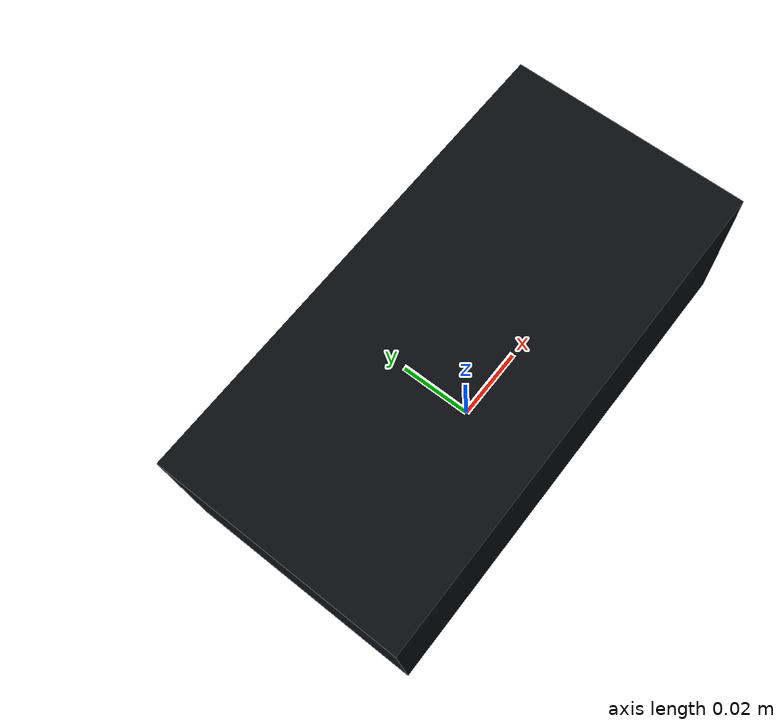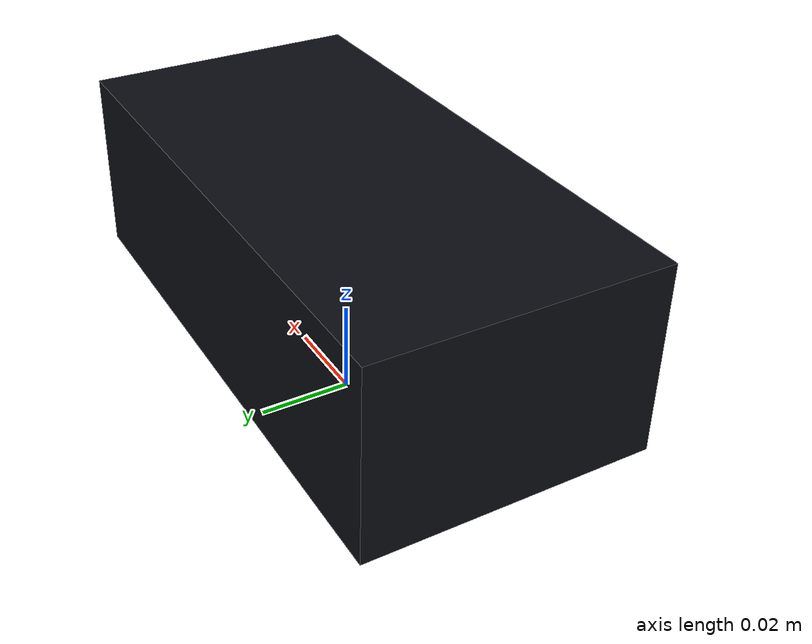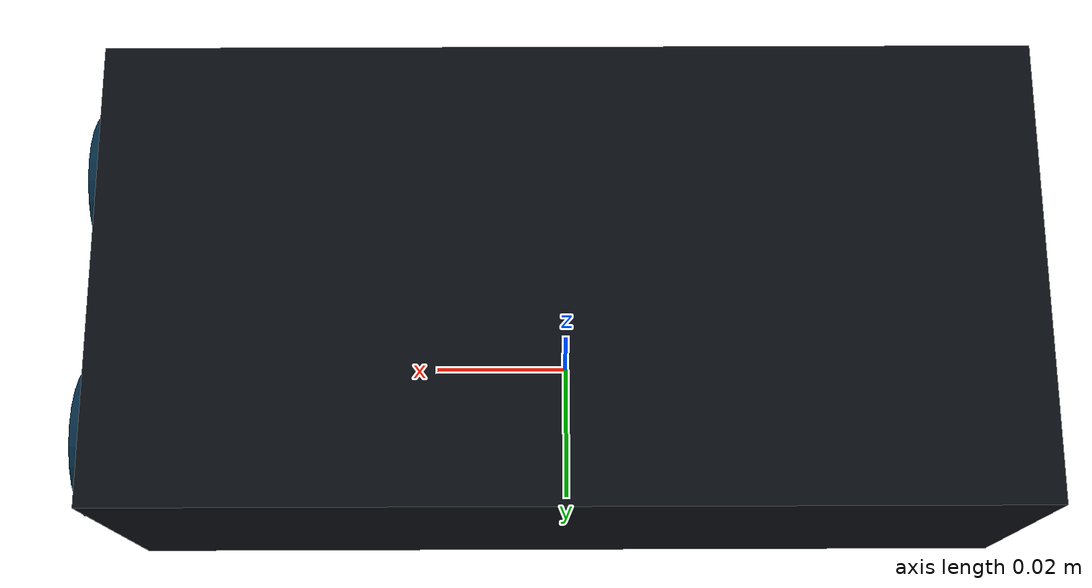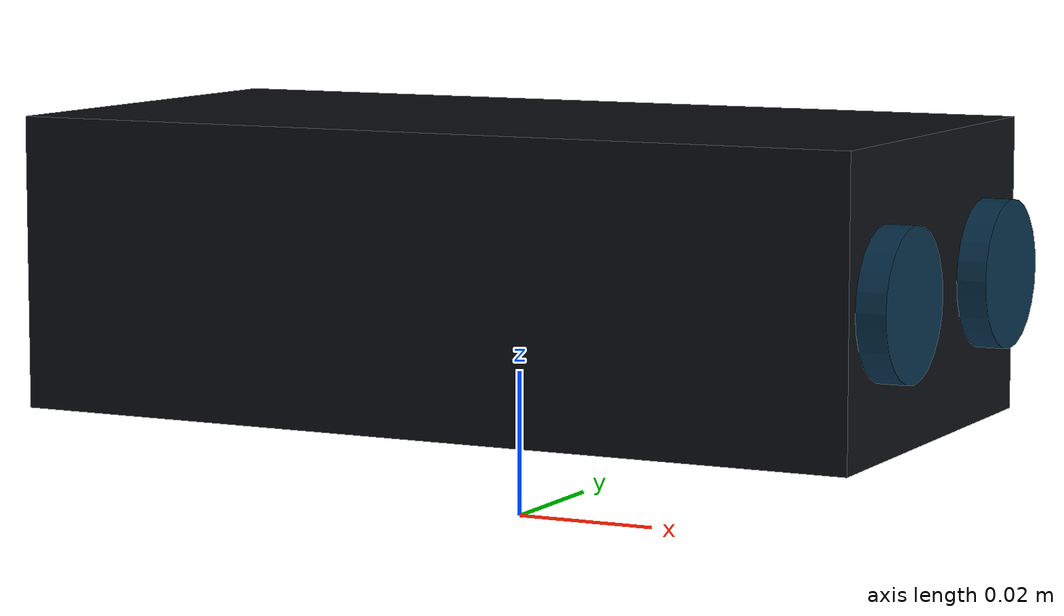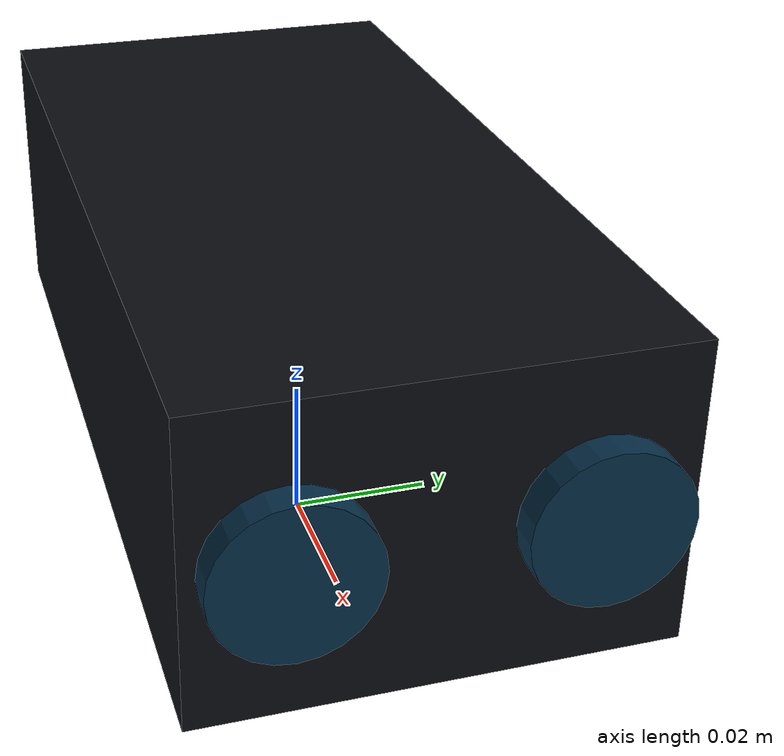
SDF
<?xml version="1.0" ?>
<sdf version="1.5">
  <model name="inspection_depth_camera">
    <pose>0 0 0.035 0 0 0</pose>
    <link name="link">
      <gravity>false</gravity>
      <kinematic>true</kinematic>
      <inertial>
        <pose>0.01 0.025 0.025 0 0 0</pose>
        <mass>0.01</mass>
        <inertia>
          <ixx>4.15e-6</ixx>
          <ixy>0</ixy>
          <ixz>0</ixz>
          <iyy>2.407e-6</iyy>
          <iyz>0</iyz>
          <izz>2.407e-6</izz>
        </inertia>
      </inertial>
      <visual name="visual">
        <!-- Primitive housing keeps this ROS demo independent of PX4's
             optional realsense_camera mesh path. -->
        <geometry><box><size>0.12 0.06 0.04</size></box></geometry>
        <material><ambient>0.04 0.05 0.07 1</ambient><diffuse>0.04 0.05 0.07 1</diffuse><specular>0.35 0.35 0.40 1</specular></material>
      </visual>
      <visual name="left_lens">
        <pose>0.062 -0.018 0 0 1.570796 0</pose>
        <geometry><cylinder><radius>0.010</radius><length>0.004</length></cylinder></geometry>
        <material><ambient>0.02 0.18 0.28 1</ambient><diffuse>0.02 0.18 0.28 1</diffuse><specular>0.7 0.8 0.9 1</specular></material>
      </visual>
      <visual name="right_lens">
        <pose>0.062 0.018 0 0 1.570796 0</pose>
        <geometry><cylinder><radius>0.010</radius><length>0.004</length></cylinder></geometry>
        <material><ambient>0.02 0.18 0.28 1</ambient><diffuse>0.02 0.18 0.28 1</diffuse><specular>0.7 0.8 0.9 1</specular></material>
      </visual>
      <sensor name="d435i_depth" type="depth">
        <always_on>true</always_on>
        <update_rate>15</update_rate>
        <visualize>false</visualize>
        <camera name="d435i_camera">
          <horizontal_fov>1.518436</horizontal_fov>
          <image>
            <format>B8G8R8</format>
            <width>848</width>
            <height>480</height>
          </image>
          <clip>
            <near>0.105</near>
            <far>20.0</far>
          </clip>
          <depth_camera></depth_camera>
          <distortion>
            <k1>0.0</k1>
            <k2>0.0</k2>
            <k3>0.0</k3>
            <p1>0.0</p1>
            <p2>0.0</p2>
            <center>0.5 0.5</center>
          </distortion>
        </camera>
        <plugin name="d435i_ros" filename="libgazebo_ros_camera.so">
          <ros>
            <namespace>/inspection_d435i</namespace>
          </ros>
          <camera_name>d435i</camera_name>
          <frame_name>inspection_d435i_link</frame_name>
          <hack_baseline>0.07</hack_baseline>
          <min_depth>0.105</min_depth>
          <max_depth>20.0</max_depth>
        </plugin>
      </sensor>
    </link>
  </model>
</sdf>
